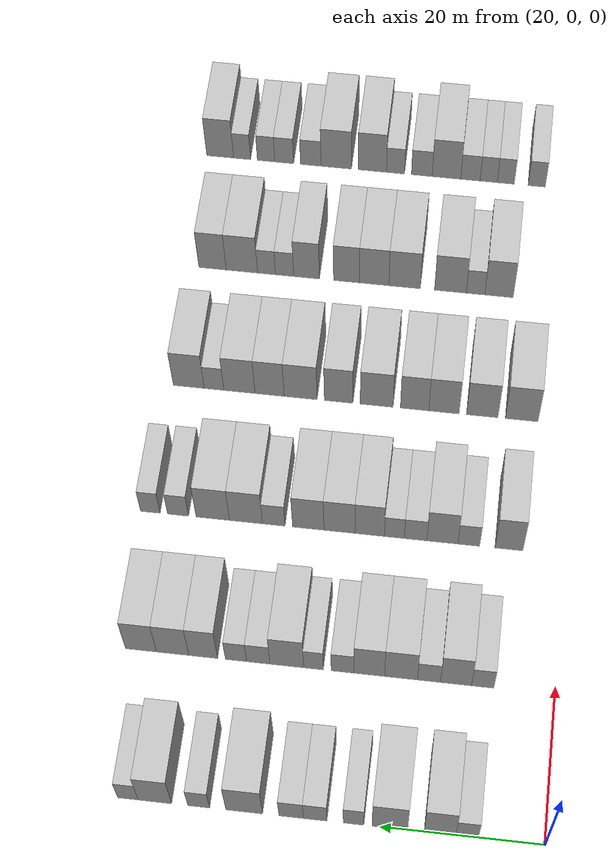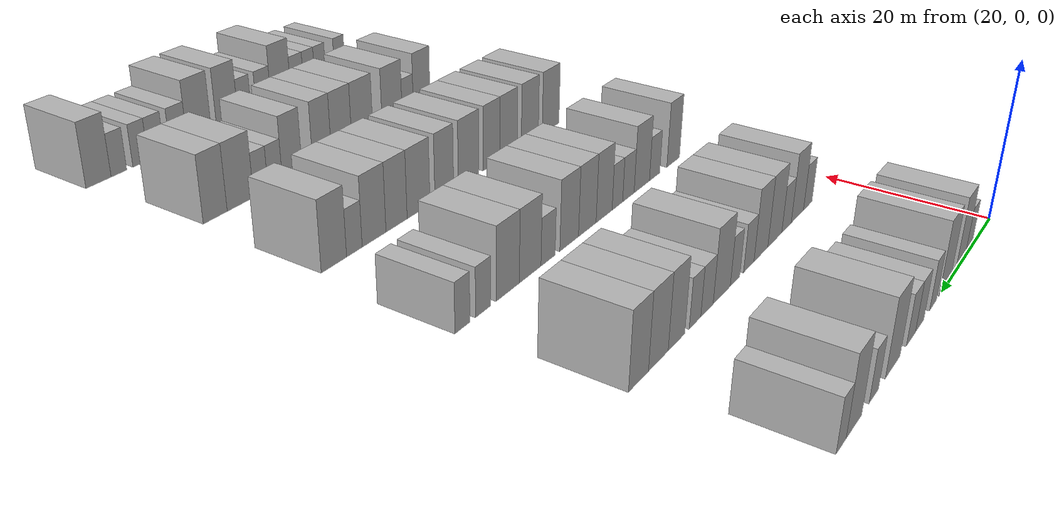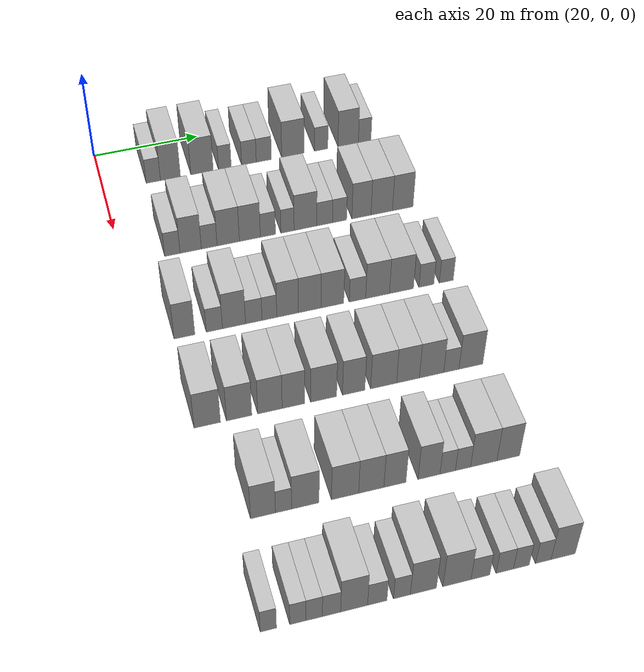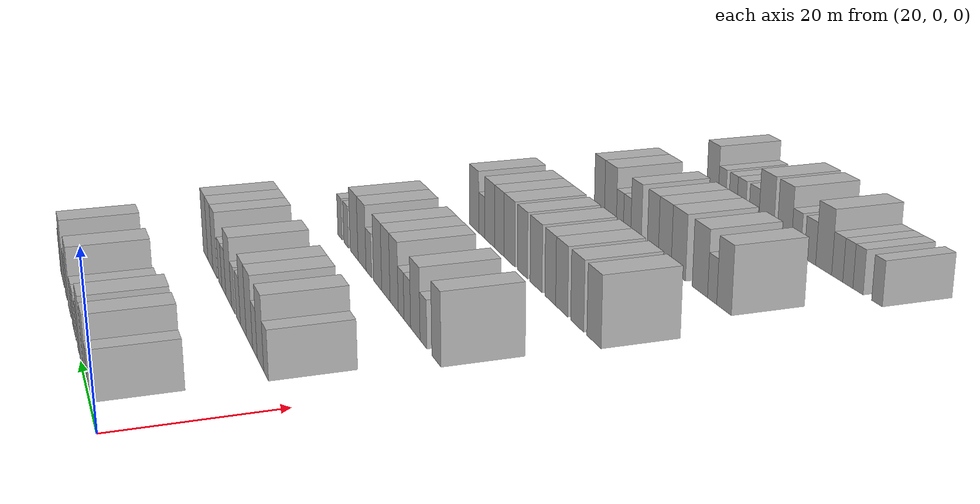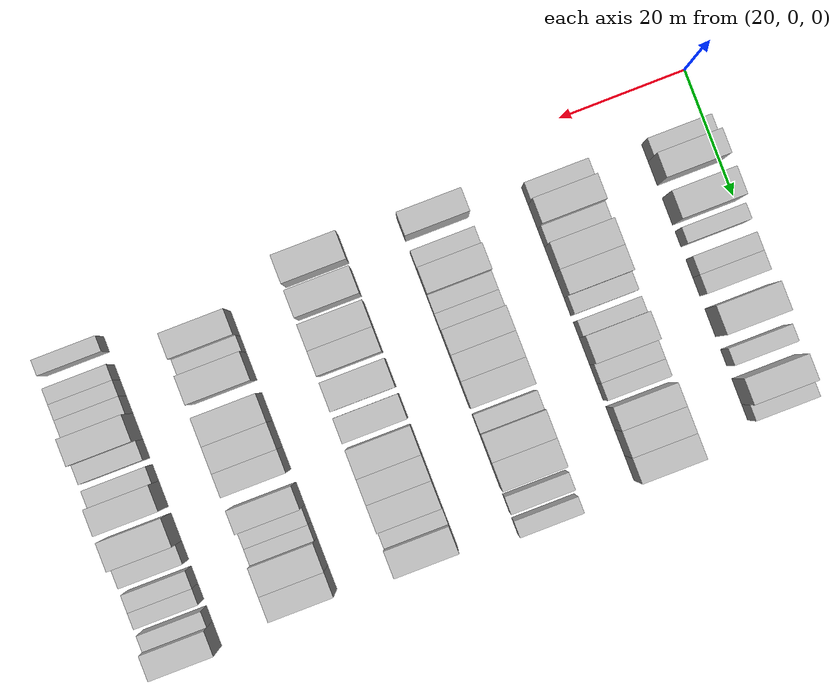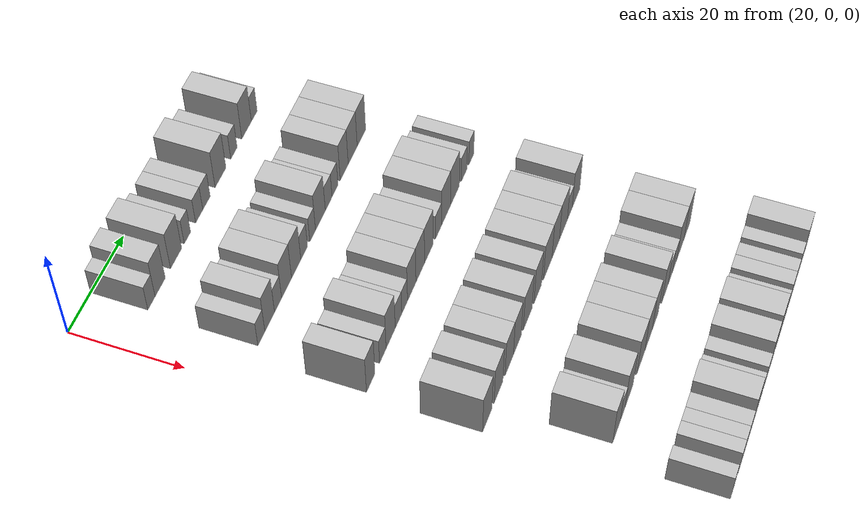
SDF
<sdf version="1.6">
 <world name="default">
  <model name="building_89">
   <static>1</static>
   <pose>25.0000 9.4239 0 0.000000 0.000000 0.000000</pose>
   <link name="link">
    <pose>0 0 3.00 0 0 0</pose>
    <collision name="collision"><geometry><box><size>10.0000 2.7198 6.0000</size></box></geometry></collision>
    <visual name="visual">
     <cast_shadows>0</cast_shadows>
     <geometry><box><size>10.0000 2.7198 6.0000</size></box></geometry>
     <material>
      <script>
       <uri>model://HANNAS_wall/materials/scripts</uri>
       <uri>model://HANNAS_wall/materials/textures</uri>
       <name>vrc/HANNAS_wall</name>
      </script>
     </material>
    </visual>
   </link>
  </model>
  <model name="building_90">
   <static>1</static>
   <pose>25.0000 12.6986 0 0.000000 0.000000 0.000000</pose>
   <link name="link">
    <pose>0 0 4.50 0 0 0</pose>
    <collision name="collision"><geometry><box><size>10.0000 3.8296 9.0000</size></box></geometry></collision>
    <visual name="visual">
     <cast_shadows>0</cast_shadows>
     <geometry><box><size>10.0000 3.8296 9.0000</size></box></geometry>
     <material>
      <script>
       <uri>model://HANNAS_wall/materials/scripts</uri>
       <uri>model://HANNAS_wall/materials/textures</uri>
       <name>vrc/HANNAS_wall</name>
      </script>
     </material>
    </visual>
   </link>
  </model>
  <model name="building_91">
   <static>1</static>
   <pose>25.0000 18.7705 0 0.000000 0.000000 0.000000</pose>
   <link name="link">
    <pose>0 0 4.50 0 0 0</pose>
    <collision name="collision"><geometry><box><size>10.0000 4.3143 9.0000</size></box></geometry></collision>
    <visual name="visual">
     <cast_shadows>0</cast_shadows>
     <geometry><box><size>10.0000 4.3143 9.0000</size></box></geometry>
     <material>
      <script>
       <uri>model://HANNAS_wall/materials/scripts</uri>
       <uri>model://HANNAS_wall/materials/textures</uri>
       <name>vrc/HANNAS_wall</name>
      </script>
     </material>
    </visual>
   </link>
  </model>
  <model name="building_92">
   <static>1</static>
   <pose>25.0000 23.1720 0 0.000000 0.000000 0.000000</pose>
   <link name="link">
    <pose>0 0 3.00 0 0 0</pose>
    <collision name="collision"><geometry><box><size>10.0000 2.4886 6.0000</size></box></geometry></collision>
    <visual name="visual">
     <cast_shadows>0</cast_shadows>
     <geometry><box><size>10.0000 2.4886 6.0000</size></box></geometry>
     <material>
      <script>
       <uri>model://HANNAS_wall/materials/scripts</uri>
       <uri>model://HANNAS_wall/materials/textures</uri>
       <name>vrc/HANNAS_wall</name>
      </script>
     </material>
    </visual>
   </link>
  </model>
  <model name="building_93">
   <static>1</static>
   <pose>25.0000 27.8497 0 0.000000 0.000000 0.000000</pose>
   <link name="link">
    <pose>0 0 3.00 0 0 0</pose>
    <collision name="collision"><geometry><box><size>10.0000 2.8667 6.0000</size></box></geometry></collision>
    <visual name="visual">
     <cast_shadows>0</cast_shadows>
     <geometry><box><size>10.0000 2.8667 6.0000</size></box></geometry>
     <material>
      <script>
       <uri>model://HANNAS_wall/materials/scripts</uri>
       <uri>model://HANNAS_wall/materials/textures</uri>
       <name>vrc/HANNAS_wall</name>
      </script>
     </material>
    </visual>
   </link>
  </model>
  <model name="building_94">
   <static>1</static>
   <pose>25.0000 30.7694 0 0.000000 0.000000 0.000000</pose>
   <link name="link">
    <pose>0 0 3.00 0 0 0</pose>
    <collision name="collision"><geometry><box><size>10.0000 2.9728 6.0000</size></box></geometry></collision>
    <visual name="visual">
     <cast_shadows>0</cast_shadows>
     <geometry><box><size>10.0000 2.9728 6.0000</size></box></geometry>
     <material>
      <script>
       <uri>model://HANNAS_wall/materials/scripts</uri>
       <uri>model://HANNAS_wall/materials/textures</uri>
       <name>vrc/HANNAS_wall</name>
      </script>
     </material>
    </visual>
   </link>
  </model>
  <model name="building_95">
   <static>1</static>
   <pose>25.0000 36.4947 0 0.000000 0.000000 0.000000</pose>
   <link name="link">
    <pose>0 0 4.50 0 0 0</pose>
    <collision name="collision"><geometry><box><size>10.0000 4.4778 9.0000</size></box></geometry></collision>
    <visual name="visual">
     <cast_shadows>0</cast_shadows>
     <geometry><box><size>10.0000 4.4778 9.0000</size></box></geometry>
     <material>
      <script>
       <uri>model://HANNAS_wall/materials/scripts</uri>
       <uri>model://HANNAS_wall/materials/textures</uri>
       <name>vrc/HANNAS_wall</name>
      </script>
     </material>
    </visual>
   </link>
  </model>
  <model name="building_96">
   <static>1</static>
   <pose>25.0000 42.0654 0 0.000000 0.000000 0.000000</pose>
   <link name="link">
    <pose>0 0 3.00 0 0 0</pose>
    <collision name="collision"><geometry><box><size>10.0000 2.6636 6.0000</size></box></geometry></collision>
    <visual name="visual">
     <cast_shadows>0</cast_shadows>
     <geometry><box><size>10.0000 2.6636 6.0000</size></box></geometry>
     <material>
      <script>
       <uri>model://HANNAS_wall/materials/scripts</uri>
       <uri>model://HANNAS_wall/materials/textures</uri>
       <name>vrc/HANNAS_wall</name>
      </script>
     </material>
    </visual>
   </link>
  </model>
  <model name="building_97">
   <static>1</static>
   <pose>25.0000 47.4403 0 0.000000 0.000000 0.000000</pose>
   <link name="link">
    <pose>0 0 4.50 0 0 0</pose>
    <collision name="collision"><geometry><box><size>10.0000 4.0862 9.0000</size></box></geometry></collision>
    <visual name="visual">
     <cast_shadows>0</cast_shadows>
     <geometry><box><size>10.0000 4.0862 9.0000</size></box></geometry>
     <material>
      <script>
       <uri>model://HANNAS_wall/materials/scripts</uri>
       <uri>model://HANNAS_wall/materials/textures</uri>
       <name>vrc/HANNAS_wall</name>
      </script>
     </material>
    </visual>
   </link>
  </model>
  <model name="building_98">
   <static>1</static>
   <pose>25.0000 50.7488 0 0.000000 0.000000 0.000000</pose>
   <link name="link">
    <pose>0 0 3.00 0 0 0</pose>
    <collision name="collision"><geometry><box><size>10.0000 2.5308 6.0000</size></box></geometry></collision>
    <visual name="visual">
     <cast_shadows>0</cast_shadows>
     <geometry><box><size>10.0000 2.5308 6.0000</size></box></geometry>
     <material>
      <script>
       <uri>model://HANNAS_wall/materials/scripts</uri>
       <uri>model://HANNAS_wall/materials/textures</uri>
       <name>vrc/HANNAS_wall</name>
      </script>
     </material>
    </visual>
   </link>
  </model>
  <model name="building_256">
   <static>1</static>
   <pose>44.0000 9.0616 0 0.000000 0.000000 0.000000</pose>
   <link name="link">
    <pose>0 0 3.00 0 0 0</pose>
    <collision name="collision"><geometry><box><size>10.0000 2.8028 6.0000</size></box></geometry></collision>
    <visual name="visual">
     <cast_shadows>0</cast_shadows>
     <geometry><box><size>10.0000 2.8028 6.0000</size></box></geometry>
     <material>
      <script>
       <uri>model://HANNAS_wall/materials/scripts</uri>
       <uri>model://HANNAS_wall/materials/textures</uri>
       <name>vrc/HANNAS_wall</name>
      </script>
     </material>
    </visual>
   </link>
  </model>
  <model name="building_257">
   <static>1</static>
   <pose>44.0000 12.4159 0 0.000000 0.000000 0.000000</pose>
   <link name="link">
    <pose>0 0 4.50 0 0 0</pose>
    <collision name="collision"><geometry><box><size>10.0000 3.9057 9.0000</size></box></geometry></collision>
    <visual name="visual">
     <cast_shadows>0</cast_shadows>
     <geometry><box><size>10.0000 3.9057 9.0000</size></box></geometry>
     <material>
      <script>
       <uri>model://HANNAS_wall/materials/scripts</uri>
       <uri>model://HANNAS_wall/materials/textures</uri>
       <name>vrc/HANNAS_wall</name>
      </script>
     </material>
    </visual>
   </link>
  </model>
  <model name="building_258">
   <static>1</static>
   <pose>44.0000 15.8152 0 0.000000 0.000000 0.000000</pose>
   <link name="link">
    <pose>0 0 3.00 0 0 0</pose>
    <collision name="collision"><geometry><box><size>10.0000 2.8927 6.0000</size></box></geometry></collision>
    <visual name="visual">
     <cast_shadows>0</cast_shadows>
     <geometry><box><size>10.0000 2.8927 6.0000</size></box></geometry>
     <material>
      <script>
       <uri>model://HANNAS_wall/materials/scripts</uri>
       <uri>model://HANNAS_wall/materials/textures</uri>
       <name>vrc/HANNAS_wall</name>
      </script>
     </material>
    </visual>
   </link>
  </model>
  <model name="building_259">
   <static>1</static>
   <pose>44.0000 19.3243 0 0.000000 0.000000 0.000000</pose>
   <link name="link">
    <pose>0 0 4.50 0 0 0</pose>
    <collision name="collision"><geometry><box><size>10.0000 4.1255 9.0000</size></box></geometry></collision>
    <visual name="visual">
     <cast_shadows>0</cast_shadows>
     <geometry><box><size>10.0000 4.1255 9.0000</size></box></geometry>
     <material>
      <script>
       <uri>model://HANNAS_wall/materials/scripts</uri>
       <uri>model://HANNAS_wall/materials/textures</uri>
       <name>vrc/HANNAS_wall</name>
      </script>
     </material>
    </visual>
   </link>
  </model>
  <model name="building_260">
   <static>1</static>
   <pose>44.0000 23.3385 0 0.000000 0.000000 0.000000</pose>
   <link name="link">
    <pose>0 0 4.50 0 0 0</pose>
    <collision name="collision"><geometry><box><size>10.0000 3.9030 9.0000</size></box></geometry></collision>
    <visual name="visual">
     <cast_shadows>0</cast_shadows>
     <geometry><box><size>10.0000 3.9030 9.0000</size></box></geometry>
     <material>
      <script>
       <uri>model://HANNAS_wall/materials/scripts</uri>
       <uri>model://HANNAS_wall/materials/textures</uri>
       <name>vrc/HANNAS_wall</name>
      </script>
     </material>
    </visual>
   </link>
  </model>
  <model name="building_261">
   <static>1</static>
   <pose>44.0000 26.7126 0 0.000000 0.000000 0.000000</pose>
   <link name="link">
    <pose>0 0 3.00 0 0 0</pose>
    <collision name="collision"><geometry><box><size>10.0000 2.8452 6.0000</size></box></geometry></collision>
    <visual name="visual">
     <cast_shadows>0</cast_shadows>
     <geometry><box><size>10.0000 2.8452 6.0000</size></box></geometry>
     <material>
      <script>
       <uri>model://HANNAS_wall/materials/scripts</uri>
       <uri>model://HANNAS_wall/materials/textures</uri>
       <name>vrc/HANNAS_wall</name>
      </script>
     </material>
    </visual>
   </link>
  </model>
  <model name="building_262">
   <static>1</static>
   <pose>44.0000 30.3696 0 0.000000 0.000000 0.000000</pose>
   <link name="link">
    <pose>0 0 3.00 0 0 0</pose>
    <collision name="collision"><geometry><box><size>10.0000 2.4688 6.0000</size></box></geometry></collision>
    <visual name="visual">
     <cast_shadows>0</cast_shadows>
     <geometry><box><size>10.0000 2.4688 6.0000</size></box></geometry>
     <material>
      <script>
       <uri>model://HANNAS_wall/materials/scripts</uri>
       <uri>model://HANNAS_wall/materials/textures</uri>
       <name>vrc/HANNAS_wall</name>
      </script>
     </material>
    </visual>
   </link>
  </model>
  <model name="building_263">
   <static>1</static>
   <pose>44.0000 33.7501 0 0.000000 0.000000 0.000000</pose>
   <link name="link">
    <pose>0 0 4.50 0 0 0</pose>
    <collision name="collision"><geometry><box><size>10.0000 4.2922 9.0000</size></box></geometry></collision>
    <visual name="visual">
     <cast_shadows>0</cast_shadows>
     <geometry><box><size>10.0000 4.2922 9.0000</size></box></geometry>
     <material>
      <script>
       <uri>model://HANNAS_wall/materials/scripts</uri>
       <uri>model://HANNAS_wall/materials/textures</uri>
       <name>vrc/HANNAS_wall</name>
      </script>
     </material>
    </visual>
   </link>
  </model>
  <model name="building_264">
   <static>1</static>
   <pose>44.0000 37.3815 0 0.000000 0.000000 0.000000</pose>
   <link name="link">
    <pose>0 0 3.00 0 0 0</pose>
    <collision name="collision"><geometry><box><size>10.0000 2.9707 6.0000</size></box></geometry></collision>
    <visual name="visual">
     <cast_shadows>0</cast_shadows>
     <geometry><box><size>10.0000 2.9707 6.0000</size></box></geometry>
     <material>
      <script>
       <uri>model://HANNAS_wall/materials/scripts</uri>
       <uri>model://HANNAS_wall/materials/textures</uri>
       <name>vrc/HANNAS_wall</name>
      </script>
     </material>
    </visual>
   </link>
  </model>
  <model name="building_265">
   <static>1</static>
   <pose>44.0000 40.2099 0 0.000000 0.000000 0.000000</pose>
   <link name="link">
    <pose>0 0 3.00 0 0 0</pose>
    <collision name="collision"><geometry><box><size>10.0000 2.6861 6.0000</size></box></geometry></collision>
    <visual name="visual">
     <cast_shadows>0</cast_shadows>
     <geometry><box><size>10.0000 2.6861 6.0000</size></box></geometry>
     <material>
      <script>
       <uri>model://HANNAS_wall/materials/scripts</uri>
       <uri>model://HANNAS_wall/materials/textures</uri>
       <name>vrc/HANNAS_wall</name>
      </script>
     </material>
    </visual>
   </link>
  </model>
  <model name="building_266">
   <static>1</static>
   <pose>44.0000 44.3796 0 0.000000 0.000000 0.000000</pose>
   <link name="link">
    <pose>0 0 4.50 0 0 0</pose>
    <collision name="collision"><geometry><box><size>10.0000 3.6533 9.0000</size></box></geometry></collision>
    <visual name="visual">
     <cast_shadows>0</cast_shadows>
     <geometry><box><size>10.0000 3.6533 9.0000</size></box></geometry>
     <material>
      <script>
       <uri>model://HANNAS_wall/materials/scripts</uri>
       <uri>model://HANNAS_wall/materials/textures</uri>
       <name>vrc/HANNAS_wall</name>
      </script>
     </material>
    </visual>
   </link>
  </model>
  <model name="building_267">
   <static>1</static>
   <pose>44.0000 48.2696 0 0.000000 0.000000 0.000000</pose>
   <link name="link">
    <pose>0 0 4.50 0 0 0</pose>
    <collision name="collision"><geometry><box><size>10.0000 4.1268 9.0000</size></box></geometry></collision>
    <visual name="visual">
     <cast_shadows>0</cast_shadows>
     <geometry><box><size>10.0000 4.1268 9.0000</size></box></geometry>
     <material>
      <script>
       <uri>model://HANNAS_wall/materials/scripts</uri>
       <uri>model://HANNAS_wall/materials/textures</uri>
       <name>vrc/HANNAS_wall</name>
      </script>
     </material>
    </visual>
   </link>
  </model>
  <model name="building_268">
   <static>1</static>
   <pose>44.0000 52.3175 0 0.000000 0.000000 0.000000</pose>
   <link name="link">
    <pose>0 0 4.50 0 0 0</pose>
    <collision name="collision"><geometry><box><size>10.0000 3.9690 9.0000</size></box></geometry></collision>
    <visual name="visual">
     <cast_shadows>0</cast_shadows>
     <geometry><box><size>10.0000 3.9690 9.0000</size></box></geometry>
     <material>
      <script>
       <uri>model://HANNAS_wall/materials/scripts</uri>
       <uri>model://HANNAS_wall/materials/textures</uri>
       <name>vrc/HANNAS_wall</name>
      </script>
     </material>
    </visual>
   </link>
  </model>
  <model name="building_432">
   <static>1</static>
   <pose>63.0000 7.1643 0 0.000000 0.000000 0.000000</pose>
   <link name="link">
    <pose>0 0 4.50 0 0 0</pose>
    <collision name="collision"><geometry><box><size>10.0000 3.6273 9.0000</size></box></geometry></collision>
    <visual name="visual">
     <cast_shadows>0</cast_shadows>
     <geometry><box><size>10.0000 3.6273 9.0000</size></box></geometry>
     <material>
      <script>
       <uri>model://HANNAS_wall/materials/scripts</uri>
       <uri>model://HANNAS_wall/materials/textures</uri>
       <name>vrc/HANNAS_wall</name>
      </script>
     </material>
    </visual>
   </link>
  </model>
  <model name="building_433">
   <static>1</static>
   <pose>63.0000 12.3921 0 0.000000 0.000000 0.000000</pose>
   <link name="link">
    <pose>0 0 3.00 0 0 0</pose>
    <collision name="collision"><geometry><box><size>10.0000 2.8283 6.0000</size></box></geometry></collision>
    <visual name="visual">
     <cast_shadows>0</cast_shadows>
     <geometry><box><size>10.0000 2.8283 6.0000</size></box></geometry>
     <material>
      <script>
       <uri>model://HANNAS_wall/materials/scripts</uri>
       <uri>model://HANNAS_wall/materials/textures</uri>
       <name>vrc/HANNAS_wall</name>
      </script>
     </material>
    </visual>
   </link>
  </model>
  <model name="building_434">
   <static>1</static>
   <pose>63.0000 15.8388 0 0.000000 0.000000 0.000000</pose>
   <link name="link">
    <pose>0 0 4.50 0 0 0</pose>
    <collision name="collision"><geometry><box><size>10.0000 4.0650 9.0000</size></box></geometry></collision>
    <visual name="visual">
     <cast_shadows>0</cast_shadows>
     <geometry><box><size>10.0000 4.0650 9.0000</size></box></geometry>
     <material>
      <script>
       <uri>model://HANNAS_wall/materials/scripts</uri>
       <uri>model://HANNAS_wall/materials/textures</uri>
       <name>vrc/HANNAS_wall</name>
      </script>
     </material>
    </visual>
   </link>
  </model>
  <model name="building_435">
   <static>1</static>
   <pose>63.0000 19.3371 0 0.000000 0.000000 0.000000</pose>
   <link name="link">
    <pose>0 0 3.00 0 0 0</pose>
    <collision name="collision"><geometry><box><size>10.0000 2.9315 6.0000</size></box></geometry></collision>
    <visual name="visual">
     <cast_shadows>0</cast_shadows>
     <geometry><box><size>10.0000 2.9315 6.0000</size></box></geometry>
     <material>
      <script>
       <uri>model://HANNAS_wall/materials/scripts</uri>
       <uri>model://HANNAS_wall/materials/textures</uri>
       <name>vrc/HANNAS_wall</name>
      </script>
     </material>
    </visual>
   </link>
  </model>
  <model name="building_436">
   <static>1</static>
   <pose>63.0000 22.1099 0 0.000000 0.000000 0.000000</pose>
   <link name="link">
    <pose>0 0 3.00 0 0 0</pose>
    <collision name="collision"><geometry><box><size>10.0000 2.6143 6.0000</size></box></geometry></collision>
    <visual name="visual">
     <cast_shadows>0</cast_shadows>
     <geometry><box><size>10.0000 2.6143 6.0000</size></box></geometry>
     <material>
      <script>
       <uri>model://HANNAS_wall/materials/scripts</uri>
       <uri>model://HANNAS_wall/materials/textures</uri>
       <name>vrc/HANNAS_wall</name>
      </script>
     </material>
    </visual>
   </link>
  </model>
  <model name="building_437">
   <static>1</static>
   <pose>63.0000 25.3473 0 0.000000 0.000000 0.000000</pose>
   <link name="link">
    <pose>0 0 4.50 0 0 0</pose>
    <collision name="collision"><geometry><box><size>10.0000 3.8605 9.0000</size></box></geometry></collision>
    <visual name="visual">
     <cast_shadows>0</cast_shadows>
     <geometry><box><size>10.0000 3.8605 9.0000</size></box></geometry>
     <material>
      <script>
       <uri>model://HANNAS_wall/materials/scripts</uri>
       <uri>model://HANNAS_wall/materials/textures</uri>
       <name>vrc/HANNAS_wall</name>
      </script>
     </material>
    </visual>
   </link>
  </model>
  <model name="building_438">
   <static>1</static>
   <pose>63.0000 29.3038 0 0.000000 0.000000 0.000000</pose>
   <link name="link">
    <pose>0 0 4.50 0 0 0</pose>
    <collision name="collision"><geometry><box><size>10.0000 4.0525 9.0000</size></box></geometry></collision>
    <visual name="visual">
     <cast_shadows>0</cast_shadows>
     <geometry><box><size>10.0000 4.0525 9.0000</size></box></geometry>
     <material>
      <script>
       <uri>model://HANNAS_wall/materials/scripts</uri>
       <uri>model://HANNAS_wall/materials/textures</uri>
       <name>vrc/HANNAS_wall</name>
      </script>
     </material>
    </visual>
   </link>
  </model>
  <model name="building_439">
   <static>1</static>
   <pose>63.0000 33.3932 0 0.000000 0.000000 0.000000</pose>
   <link name="link">
    <pose>0 0 4.50 0 0 0</pose>
    <collision name="collision"><geometry><box><size>10.0000 4.1262 9.0000</size></box></geometry></collision>
    <visual name="visual">
     <cast_shadows>0</cast_shadows>
     <geometry><box><size>10.0000 4.1262 9.0000</size></box></geometry>
     <material>
      <script>
       <uri>model://HANNAS_wall/materials/scripts</uri>
       <uri>model://HANNAS_wall/materials/textures</uri>
       <name>vrc/HANNAS_wall</name>
      </script>
     </material>
    </visual>
   </link>
  </model>
  <model name="building_440">
   <static>1</static>
   <pose>63.0000 37.9385 0 0.000000 0.000000 0.000000</pose>
   <link name="link">
    <pose>0 0 3.00 0 0 0</pose>
    <collision name="collision"><geometry><box><size>10.0000 2.9646 6.0000</size></box></geometry></collision>
    <visual name="visual">
     <cast_shadows>0</cast_shadows>
     <geometry><box><size>10.0000 2.9646 6.0000</size></box></geometry>
     <material>
      <script>
       <uri>model://HANNAS_wall/materials/scripts</uri>
       <uri>model://HANNAS_wall/materials/textures</uri>
       <name>vrc/HANNAS_wall</name>
      </script>
     </material>
    </visual>
   </link>
  </model>
  <model name="building_441">
   <static>1</static>
   <pose>63.0000 41.5981 0 0.000000 0.000000 0.000000</pose>
   <link name="link">
    <pose>0 0 4.50 0 0 0</pose>
    <collision name="collision"><geometry><box><size>10.0000 4.3545 9.0000</size></box></geometry></collision>
    <visual name="visual">
     <cast_shadows>0</cast_shadows>
     <geometry><box><size>10.0000 4.3545 9.0000</size></box></geometry>
     <material>
      <script>
       <uri>model://HANNAS_wall/materials/scripts</uri>
       <uri>model://HANNAS_wall/materials/textures</uri>
       <name>vrc/HANNAS_wall</name>
      </script>
     </material>
    </visual>
   </link>
  </model>
  <model name="building_442">
   <static>1</static>
   <pose>63.0000 45.9833 0 0.000000 0.000000 0.000000</pose>
   <link name="link">
    <pose>0 0 4.50 0 0 0</pose>
    <collision name="collision"><geometry><box><size>10.0000 4.4160 9.0000</size></box></geometry></collision>
    <visual name="visual">
     <cast_shadows>0</cast_shadows>
     <geometry><box><size>10.0000 4.4160 9.0000</size></box></geometry>
     <material>
      <script>
       <uri>model://HANNAS_wall/materials/scripts</uri>
       <uri>model://HANNAS_wall/materials/textures</uri>
       <name>vrc/HANNAS_wall</name>
      </script>
     </material>
    </visual>
   </link>
  </model>
  <model name="building_443">
   <static>1</static>
   <pose>63.0000 50.5757 0 0.000000 0.000000 0.000000</pose>
   <link name="link">
    <pose>0 0 3.00 0 0 0</pose>
    <collision name="collision"><geometry><box><size>10.0000 2.7686 6.0000</size></box></geometry></collision>
    <visual name="visual">
     <cast_shadows>0</cast_shadows>
     <geometry><box><size>10.0000 2.7686 6.0000</size></box></geometry>
     <material>
      <script>
       <uri>model://HANNAS_wall/materials/scripts</uri>
       <uri>model://HANNAS_wall/materials/textures</uri>
       <name>vrc/HANNAS_wall</name>
      </script>
     </material>
    </visual>
   </link>
  </model>
  <model name="building_444">
   <static>1</static>
   <pose>63.0000 54.2543 0 0.000000 0.000000 0.000000</pose>
   <link name="link">
    <pose>0 0 3.00 0 0 0</pose>
    <collision name="collision"><geometry><box><size>10.0000 2.5886 6.0000</size></box></geometry></collision>
    <visual name="visual">
     <cast_shadows>0</cast_shadows>
     <geometry><box><size>10.0000 2.5886 6.0000</size></box></geometry>
     <material>
      <script>
       <uri>model://HANNAS_wall/materials/scripts</uri>
       <uri>model://HANNAS_wall/materials/textures</uri>
       <name>vrc/HANNAS_wall</name>
      </script>
     </material>
    </visual>
   </link>
  </model>
  <model name="building_598">
   <static>1</static>
   <pose>82.0000 6.8395 0 0.000000 0.000000 0.000000</pose>
   <link name="link">
    <pose>0 0 4.50 0 0 0</pose>
    <collision name="collision"><geometry><box><size>10.0000 4.3934 9.0000</size></box></geometry></collision>
    <visual name="visual">
     <cast_shadows>0</cast_shadows>
     <geometry><box><size>10.0000 4.3934 9.0000</size></box></geometry>
     <material>
      <script>
       <uri>model://HANNAS_wall/materials/scripts</uri>
       <uri>model://HANNAS_wall/materials/textures</uri>
       <name>vrc/HANNAS_wall</name>
      </script>
     </material>
    </visual>
   </link>
  </model>
  <model name="building_599">
   <static>1</static>
   <pose>82.0000 12.1576 0 0.000000 0.000000 0.000000</pose>
   <link name="link">
    <pose>0 0 4.50 0 0 0</pose>
    <collision name="collision"><geometry><box><size>10.0000 4.2428 9.0000</size></box></geometry></collision>
    <visual name="visual">
     <cast_shadows>0</cast_shadows>
     <geometry><box><size>10.0000 4.2428 9.0000</size></box></geometry>
     <material>
      <script>
       <uri>model://HANNAS_wall/materials/scripts</uri>
       <uri>model://HANNAS_wall/materials/textures</uri>
       <name>vrc/HANNAS_wall</name>
      </script>
     </material>
    </visual>
   </link>
  </model>
  <model name="building_600">
   <static>1</static>
   <pose>82.0000 17.3331 0 0.000000 0.000000 0.000000</pose>
   <link name="link">
    <pose>0 0 4.50 0 0 0</pose>
    <collision name="collision"><geometry><box><size>10.0000 4.1081 9.0000</size></box></geometry></collision>
    <visual name="visual">
     <cast_shadows>0</cast_shadows>
     <geometry><box><size>10.0000 4.1081 9.0000</size></box></geometry>
     <material>
      <script>
       <uri>model://HANNAS_wall/materials/scripts</uri>
       <uri>model://HANNAS_wall/materials/textures</uri>
       <name>vrc/HANNAS_wall</name>
      </script>
     </material>
    </visual>
   </link>
  </model>
  <model name="building_601">
   <static>1</static>
   <pose>82.0000 21.3079 0 0.000000 0.000000 0.000000</pose>
   <link name="link">
    <pose>0 0 4.50 0 0 0</pose>
    <collision name="collision"><geometry><box><size>10.0000 3.8416 9.0000</size></box></geometry></collision>
    <visual name="visual">
     <cast_shadows>0</cast_shadows>
     <geometry><box><size>10.0000 3.8416 9.0000</size></box></geometry>
     <material>
      <script>
       <uri>model://HANNAS_wall/materials/scripts</uri>
       <uri>model://HANNAS_wall/materials/textures</uri>
       <name>vrc/HANNAS_wall</name>
      </script>
     </material>
    </visual>
   </link>
  </model>
  <model name="building_602">
   <static>1</static>
   <pose>82.0000 26.4532 0 0.000000 0.000000 0.000000</pose>
   <link name="link">
    <pose>0 0 4.50 0 0 0</pose>
    <collision name="collision"><geometry><box><size>10.0000 4.4490 9.0000</size></box></geometry></collision>
    <visual name="visual">
     <cast_shadows>0</cast_shadows>
     <geometry><box><size>10.0000 4.4490 9.0000</size></box></geometry>
     <material>
      <script>
       <uri>model://HANNAS_wall/materials/scripts</uri>
       <uri>model://HANNAS_wall/materials/textures</uri>
       <name>vrc/HANNAS_wall</name>
      </script>
     </material>
    </visual>
   </link>
  </model>
  <model name="building_603">
   <static>1</static>
   <pose>82.0000 31.6119 0 0.000000 0.000000 0.000000</pose>
   <link name="link">
    <pose>0 0 4.50 0 0 0</pose>
    <collision name="collision"><geometry><box><size>10.0000 3.8684 9.0000</size></box></geometry></collision>
    <visual name="visual">
     <cast_shadows>0</cast_shadows>
     <geometry><box><size>10.0000 3.8684 9.0000</size></box></geometry>
     <material>
      <script>
       <uri>model://HANNAS_wall/materials/scripts</uri>
       <uri>model://HANNAS_wall/materials/textures</uri>
       <name>vrc/HANNAS_wall</name>
      </script>
     </material>
    </visual>
   </link>
  </model>
  <model name="building_604">
   <static>1</static>
   <pose>82.0000 36.7904 0 0.000000 0.000000 0.000000</pose>
   <link name="link">
    <pose>0 0 4.50 0 0 0</pose>
    <collision name="collision"><geometry><box><size>10.0000 4.4886 9.0000</size></box></geometry></collision>
    <visual name="visual">
     <cast_shadows>0</cast_shadows>
     <geometry><box><size>10.0000 4.4886 9.0000</size></box></geometry>
     <material>
      <script>
       <uri>model://HANNAS_wall/materials/scripts</uri>
       <uri>model://HANNAS_wall/materials/textures</uri>
       <name>vrc/HANNAS_wall</name>
      </script>
     </material>
    </visual>
   </link>
  </model>
  <model name="building_605">
   <static>1</static>
   <pose>82.0000 41.0226 0 0.000000 0.000000 0.000000</pose>
   <link name="link">
    <pose>0 0 4.50 0 0 0</pose>
    <collision name="collision"><geometry><box><size>10.0000 3.9758 9.0000</size></box></geometry></collision>
    <visual name="visual">
     <cast_shadows>0</cast_shadows>
     <geometry><box><size>10.0000 3.9758 9.0000</size></box></geometry>
     <material>
      <script>
       <uri>model://HANNAS_wall/materials/scripts</uri>
       <uri>model://HANNAS_wall/materials/textures</uri>
       <name>vrc/HANNAS_wall</name>
      </script>
     </material>
    </visual>
   </link>
  </model>
  <model name="building_606">
   <static>1</static>
   <pose>82.0000 45.1505 0 0.000000 0.000000 0.000000</pose>
   <link name="link">
    <pose>0 0 4.50 0 0 0</pose>
    <collision name="collision"><geometry><box><size>10.0000 4.2802 9.0000</size></box></geometry></collision>
    <visual name="visual">
     <cast_shadows>0</cast_shadows>
     <geometry><box><size>10.0000 4.2802 9.0000</size></box></geometry>
     <material>
      <script>
       <uri>model://HANNAS_wall/materials/scripts</uri>
       <uri>model://HANNAS_wall/materials/textures</uri>
       <name>vrc/HANNAS_wall</name>
      </script>
     </material>
    </visual>
   </link>
  </model>
  <model name="building_607">
   <static>1</static>
   <pose>82.0000 48.6370 0 0.000000 0.000000 0.000000</pose>
   <link name="link">
    <pose>0 0 3.00 0 0 0</pose>
    <collision name="collision"><geometry><box><size>10.0000 2.6927 6.0000</size></box></geometry></collision>
    <visual name="visual">
     <cast_shadows>0</cast_shadows>
     <geometry><box><size>10.0000 2.6927 6.0000</size></box></geometry>
     <material>
      <script>
       <uri>model://HANNAS_wall/materials/scripts</uri>
       <uri>model://HANNAS_wall/materials/textures</uri>
       <name>vrc/HANNAS_wall</name>
      </script>
     </material>
    </visual>
   </link>
  </model>
  <model name="building_608">
   <static>1</static>
   <pose>82.0000 52.0952 0 0.000000 0.000000 0.000000</pose>
   <link name="link">
    <pose>0 0 4.50 0 0 0</pose>
    <collision name="collision"><geometry><box><size>10.0000 4.2237 9.0000</size></box></geometry></collision>
    <visual name="visual">
     <cast_shadows>0</cast_shadows>
     <geometry><box><size>10.0000 4.2237 9.0000</size></box></geometry>
     <material>
      <script>
       <uri>model://HANNAS_wall/materials/scripts</uri>
       <uri>model://HANNAS_wall/materials/textures</uri>
       <name>vrc/HANNAS_wall</name>
      </script>
     </material>
    </visual>
   </link>
  </model>
  <model name="building_752">
   <static>1</static>
   <pose>101.0000 11.3421 0 0.000000 0.000000 0.000000</pose>
   <link name="link">
    <pose>0 0 4.50 0 0 0</pose>
    <collision name="collision"><geometry><box><size>10.0000 3.9722 9.0000</size></box></geometry></collision>
    <visual name="visual">
     <cast_shadows>0</cast_shadows>
     <geometry><box><size>10.0000 3.9722 9.0000</size></box></geometry>
     <material>
      <script>
       <uri>model://HANNAS_wall/materials/scripts</uri>
       <uri>model://HANNAS_wall/materials/textures</uri>
       <name>vrc/HANNAS_wall</name>
      </script>
     </material>
    </visual>
   </link>
  </model>
  <model name="building_753">
   <static>1</static>
   <pose>101.0000 14.6197 0 0.000000 0.000000 0.000000</pose>
   <link name="link">
    <pose>0 0 3.00 0 0 0</pose>
    <collision name="collision"><geometry><box><size>10.0000 2.5831 6.0000</size></box></geometry></collision>
    <visual name="visual">
     <cast_shadows>0</cast_shadows>
     <geometry><box><size>10.0000 2.5831 6.0000</size></box></geometry>
     <material>
      <script>
       <uri>model://HANNAS_wall/materials/scripts</uri>
       <uri>model://HANNAS_wall/materials/textures</uri>
       <name>vrc/HANNAS_wall</name>
      </script>
     </material>
    </visual>
   </link>
  </model>
  <model name="building_754">
   <static>1</static>
   <pose>101.0000 18.1289 0 0.000000 0.000000 0.000000</pose>
   <link name="link">
    <pose>0 0 4.50 0 0 0</pose>
    <collision name="collision"><geometry><box><size>10.0000 4.4354 9.0000</size></box></geometry></collision>
    <visual name="visual">
     <cast_shadows>0</cast_shadows>
     <geometry><box><size>10.0000 4.4354 9.0000</size></box></geometry>
     <material>
      <script>
       <uri>model://HANNAS_wall/materials/scripts</uri>
       <uri>model://HANNAS_wall/materials/textures</uri>
       <name>vrc/HANNAS_wall</name>
      </script>
     </material>
    </visual>
   </link>
  </model>
  <model name="building_755">
   <static>1</static>
   <pose>101.0000 24.5581 0 0.000000 0.000000 0.000000</pose>
   <link name="link">
    <pose>0 0 4.50 0 0 0</pose>
    <collision name="collision"><geometry><box><size>10.0000 4.4230 9.0000</size></box></geometry></collision>
    <visual name="visual">
     <cast_shadows>0</cast_shadows>
     <geometry><box><size>10.0000 4.4230 9.0000</size></box></geometry>
     <material>
      <script>
       <uri>model://HANNAS_wall/materials/scripts</uri>
       <uri>model://HANNAS_wall/materials/textures</uri>
       <name>vrc/HANNAS_wall</name>
      </script>
     </material>
    </visual>
   </link>
  </model>
  <model name="building_756">
   <static>1</static>
   <pose>101.0000 28.8350 0 0.000000 0.000000 0.000000</pose>
   <link name="link">
    <pose>0 0 4.50 0 0 0</pose>
    <collision name="collision"><geometry><box><size>10.0000 4.1308 9.0000</size></box></geometry></collision>
    <visual name="visual">
     <cast_shadows>0</cast_shadows>
     <geometry><box><size>10.0000 4.1308 9.0000</size></box></geometry>
     <material>
      <script>
       <uri>model://HANNAS_wall/materials/scripts</uri>
       <uri>model://HANNAS_wall/materials/textures</uri>
       <name>vrc/HANNAS_wall</name>
      </script>
     </material>
    </visual>
   </link>
  </model>
  <model name="building_757">
   <static>1</static>
   <pose>101.0000 32.7173 0 0.000000 0.000000 0.000000</pose>
   <link name="link">
    <pose>0 0 4.50 0 0 0</pose>
    <collision name="collision"><geometry><box><size>10.0000 3.6339 9.0000</size></box></geometry></collision>
    <visual name="visual">
     <cast_shadows>0</cast_shadows>
     <geometry><box><size>10.0000 3.6339 9.0000</size></box></geometry>
     <material>
      <script>
       <uri>model://HANNAS_wall/materials/scripts</uri>
       <uri>model://HANNAS_wall/materials/textures</uri>
       <name>vrc/HANNAS_wall</name>
      </script>
     </material>
    </visual>
   </link>
  </model>
  <model name="building_758">
   <static>1</static>
   <pose>101.0000 38.3546 0 0.000000 0.000000 0.000000</pose>
   <link name="link">
    <pose>0 0 4.50 0 0 0</pose>
    <collision name="collision"><geometry><box><size>10.0000 3.6406 9.0000</size></box></geometry></collision>
    <visual name="visual">
     <cast_shadows>0</cast_shadows>
     <geometry><box><size>10.0000 3.6406 9.0000</size></box></geometry>
     <material>
      <script>
       <uri>model://HANNAS_wall/materials/scripts</uri>
       <uri>model://HANNAS_wall/materials/textures</uri>
       <name>vrc/HANNAS_wall</name>
      </script>
     </material>
    </visual>
   </link>
  </model>
  <model name="building_759">
   <static>1</static>
   <pose>101.0000 41.4659 0 0.000000 0.000000 0.000000</pose>
   <link name="link">
    <pose>0 0 3.00 0 0 0</pose>
    <collision name="collision"><geometry><box><size>10.0000 2.5821 6.0000</size></box></geometry></collision>
    <visual name="visual">
     <cast_shadows>0</cast_shadows>
     <geometry><box><size>10.0000 2.5821 6.0000</size></box></geometry>
     <material>
      <script>
       <uri>model://HANNAS_wall/materials/scripts</uri>
       <uri>model://HANNAS_wall/materials/textures</uri>
       <name>vrc/HANNAS_wall</name>
      </script>
     </material>
    </visual>
   </link>
  </model>
  <model name="building_760">
   <static>1</static>
   <pose>101.0000 44.0207 0 0.000000 0.000000 0.000000</pose>
   <link name="link">
    <pose>0 0 3.00 0 0 0</pose>
    <collision name="collision"><geometry><box><size>10.0000 2.5274 6.0000</size></box></geometry></collision>
    <visual name="visual">
     <cast_shadows>0</cast_shadows>
     <geometry><box><size>10.0000 2.5274 6.0000</size></box></geometry>
     <material>
      <script>
       <uri>model://HANNAS_wall/materials/scripts</uri>
       <uri>model://HANNAS_wall/materials/textures</uri>
       <name>vrc/HANNAS_wall</name>
      </script>
     </material>
    </visual>
   </link>
  </model>
  <model name="building_761">
   <static>1</static>
   <pose>101.0000 47.5026 0 0.000000 0.000000 0.000000</pose>
   <link name="link">
    <pose>0 0 4.50 0 0 0</pose>
    <collision name="collision"><geometry><box><size>10.0000 4.4363 9.0000</size></box></geometry></collision>
    <visual name="visual">
     <cast_shadows>0</cast_shadows>
     <geometry><box><size>10.0000 4.4363 9.0000</size></box></geometry>
     <material>
      <script>
       <uri>model://HANNAS_wall/materials/scripts</uri>
       <uri>model://HANNAS_wall/materials/textures</uri>
       <name>vrc/HANNAS_wall</name>
      </script>
     </material>
    </visual>
   </link>
  </model>
  <model name="building_762">
   <static>1</static>
   <pose>101.0000 51.6554 0 0.000000 0.000000 0.000000</pose>
   <link name="link">
    <pose>0 0 4.50 0 0 0</pose>
    <collision name="collision"><geometry><box><size>10.0000 3.8693 9.0000</size></box></geometry></collision>
    <visual name="visual">
     <cast_shadows>0</cast_shadows>
     <geometry><box><size>10.0000 3.8693 9.0000</size></box></geometry>
     <material>
      <script>
       <uri>model://HANNAS_wall/materials/scripts</uri>
       <uri>model://HANNAS_wall/materials/textures</uri>
       <name>vrc/HANNAS_wall</name>
      </script>
     </material>
    </visual>
   </link>
  </model>
  <model name="building_931">
   <static>1</static>
   <pose>120.0000 7.3425 0 0.000000 0.000000 0.000000</pose>
   <link name="link">
    <pose>0 0 3.00 0 0 0</pose>
    <collision name="collision"><geometry><box><size>10.0000 2.4574 6.0000</size></box></geometry></collision>
    <visual name="visual">
     <cast_shadows>0</cast_shadows>
     <geometry><box><size>10.0000 2.4574 6.0000</size></box></geometry>
     <material>
      <script>
       <uri>model://HANNAS_wall/materials/scripts</uri>
       <uri>model://HANNAS_wall/materials/textures</uri>
       <name>vrc/HANNAS_wall</name>
      </script>
     </material>
    </visual>
   </link>
  </model>
  <model name="building_932">
   <static>1</static>
   <pose>120.0000 11.8010 0 0.000000 0.000000 0.000000</pose>
   <link name="link">
    <pose>0 0 3.00 0 0 0</pose>
    <collision name="collision"><geometry><box><size>10.0000 2.4595 6.0000</size></box></geometry></collision>
    <visual name="visual">
     <cast_shadows>0</cast_shadows>
     <geometry><box><size>10.0000 2.4595 6.0000</size></box></geometry>
     <material>
      <script>
       <uri>model://HANNAS_wall/materials/scripts</uri>
       <uri>model://HANNAS_wall/materials/textures</uri>
       <name>vrc/HANNAS_wall</name>
      </script>
     </material>
    </visual>
   </link>
  </model>
  <model name="building_933">
   <static>1</static>
   <pose>120.0000 14.2724 0 0.000000 0.000000 0.000000</pose>
   <link name="link">
    <pose>0 0 3.00 0 0 0</pose>
    <collision name="collision"><geometry><box><size>10.0000 2.4833 6.0000</size></box></geometry></collision>
    <visual name="visual">
     <cast_shadows>0</cast_shadows>
     <geometry><box><size>10.0000 2.4833 6.0000</size></box></geometry>
     <material>
      <script>
       <uri>model://HANNAS_wall/materials/scripts</uri>
       <uri>model://HANNAS_wall/materials/textures</uri>
       <name>vrc/HANNAS_wall</name>
      </script>
     </material>
    </visual>
   </link>
  </model>
  <model name="building_934">
   <static>1</static>
   <pose>120.0000 16.9088 0 0.000000 0.000000 0.000000</pose>
   <link name="link">
    <pose>0 0 3.00 0 0 0</pose>
    <collision name="collision"><geometry><box><size>10.0000 2.7896 6.0000</size></box></geometry></collision>
    <visual name="visual">
     <cast_shadows>0</cast_shadows>
     <geometry><box><size>10.0000 2.7896 6.0000</size></box></geometry>
     <material>
      <script>
       <uri>model://HANNAS_wall/materials/scripts</uri>
       <uri>model://HANNAS_wall/materials/textures</uri>
       <name>vrc/HANNAS_wall</name>
      </script>
     </material>
    </visual>
   </link>
  </model>
  <model name="building_935">
   <static>1</static>
   <pose>120.0000 20.3779 0 0.000000 0.000000 0.000000</pose>
   <link name="link">
    <pose>0 0 4.50 0 0 0</pose>
    <collision name="collision"><geometry><box><size>10.0000 4.1485 9.0000</size></box></geometry></collision>
    <visual name="visual">
     <cast_shadows>0</cast_shadows>
     <geometry><box><size>10.0000 4.1485 9.0000</size></box></geometry>
     <material>
      <script>
       <uri>model://HANNAS_wall/materials/scripts</uri>
       <uri>model://HANNAS_wall/materials/textures</uri>
       <name>vrc/HANNAS_wall</name>
      </script>
     </material>
    </visual>
   </link>
  </model>
  <model name="building_936">
   <static>1</static>
   <pose>120.0000 23.9516 0 0.000000 0.000000 0.000000</pose>
   <link name="link">
    <pose>0 0 3.00 0 0 0</pose>
    <collision name="collision"><geometry><box><size>10.0000 2.9990 6.0000</size></box></geometry></collision>
    <visual name="visual">
     <cast_shadows>0</cast_shadows>
     <geometry><box><size>10.0000 2.9990 6.0000</size></box></geometry>
     <material>
      <script>
       <uri>model://HANNAS_wall/materials/scripts</uri>
       <uri>model://HANNAS_wall/materials/textures</uri>
       <name>vrc/HANNAS_wall</name>
      </script>
     </material>
    </visual>
   </link>
  </model>
  <model name="building_937">
   <static>1</static>
   <pose>120.0000 27.7667 0 0.000000 0.000000 0.000000</pose>
   <link name="link">
    <pose>0 0 3.00 0 0 0</pose>
    <collision name="collision"><geometry><box><size>10.0000 2.6311 6.0000</size></box></geometry></collision>
    <visual name="visual">
     <cast_shadows>0</cast_shadows>
     <geometry><box><size>10.0000 2.6311 6.0000</size></box></geometry>
     <material>
      <script>
       <uri>model://HANNAS_wall/materials/scripts</uri>
       <uri>model://HANNAS_wall/materials/textures</uri>
       <name>vrc/HANNAS_wall</name>
      </script>
     </material>
    </visual>
   </link>
  </model>
  <model name="building_938">
   <static>1</static>
   <pose>120.0000 31.1260 0 0.000000 0.000000 0.000000</pose>
   <link name="link">
    <pose>0 0 4.50 0 0 0</pose>
    <collision name="collision"><geometry><box><size>10.0000 4.0875 9.0000</size></box></geometry></collision>
    <visual name="visual">
     <cast_shadows>0</cast_shadows>
     <geometry><box><size>10.0000 4.0875 9.0000</size></box></geometry>
     <material>
      <script>
       <uri>model://HANNAS_wall/materials/scripts</uri>
       <uri>model://HANNAS_wall/materials/textures</uri>
       <name>vrc/HANNAS_wall</name>
      </script>
     </material>
    </visual>
   </link>
  </model>
  <model name="building_939">
   <static>1</static>
   <pose>120.0000 36.3870 0 0.000000 0.000000 0.000000</pose>
   <link name="link">
    <pose>0 0 4.50 0 0 0</pose>
    <collision name="collision"><geometry><box><size>10.0000 4.4346 9.0000</size></box></geometry></collision>
    <visual name="visual">
     <cast_shadows>0</cast_shadows>
     <geometry><box><size>10.0000 4.4346 9.0000</size></box></geometry>
     <material>
      <script>
       <uri>model://HANNAS_wall/materials/scripts</uri>
       <uri>model://HANNAS_wall/materials/textures</uri>
       <name>vrc/HANNAS_wall</name>
      </script>
     </material>
    </visual>
   </link>
  </model>
  <model name="building_940">
   <static>1</static>
   <pose>120.0000 40.1040 0 0.000000 0.000000 0.000000</pose>
   <link name="link">
    <pose>0 0 3.00 0 0 0</pose>
    <collision name="collision"><geometry><box><size>10.0000 2.9995 6.0000</size></box></geometry></collision>
    <visual name="visual">
     <cast_shadows>0</cast_shadows>
     <geometry><box><size>10.0000 2.9995 6.0000</size></box></geometry>
     <material>
      <script>
       <uri>model://HANNAS_wall/materials/scripts</uri>
       <uri>model://HANNAS_wall/materials/textures</uri>
       <name>vrc/HANNAS_wall</name>
      </script>
     </material>
    </visual>
   </link>
  </model>
  <model name="building_941">
   <static>1</static>
   <pose>120.0000 43.9877 0 0.000000 0.000000 0.000000</pose>
   <link name="link">
    <pose>0 0 3.00 0 0 0</pose>
    <collision name="collision"><geometry><box><size>10.0000 2.7679 6.0000</size></box></geometry></collision>
    <visual name="visual">
     <cast_shadows>0</cast_shadows>
     <geometry><box><size>10.0000 2.7679 6.0000</size></box></geometry>
     <material>
      <script>
       <uri>model://HANNAS_wall/materials/scripts</uri>
       <uri>model://HANNAS_wall/materials/textures</uri>
       <name>vrc/HANNAS_wall</name>
      </script>
     </material>
    </visual>
   </link>
  </model>
  <model name="building_942">
   <static>1</static>
   <pose>120.0000 46.6373 0 0.000000 0.000000 0.000000</pose>
   <link name="link">
    <pose>0 0 3.00 0 0 0</pose>
    <collision name="collision"><geometry><box><size>10.0000 2.5313 6.0000</size></box></geometry></collision>
    <visual name="visual">
     <cast_shadows>0</cast_shadows>
     <geometry><box><size>10.0000 2.5313 6.0000</size></box></geometry>
     <material>
      <script>
       <uri>model://HANNAS_wall/materials/scripts</uri>
       <uri>model://HANNAS_wall/materials/textures</uri>
       <name>vrc/HANNAS_wall</name>
      </script>
     </material>
    </visual>
   </link>
  </model>
  <model name="building_943">
   <static>1</static>
   <pose>120.0000 50.1552 0 0.000000 0.000000 0.000000</pose>
   <link name="link">
    <pose>0 0 3.00 0 0 0</pose>
    <collision name="collision"><geometry><box><size>10.0000 2.5044 6.0000</size></box></geometry></collision>
    <visual name="visual">
     <cast_shadows>0</cast_shadows>
     <geometry><box><size>10.0000 2.5044 6.0000</size></box></geometry>
     <material>
      <script>
       <uri>model://HANNAS_wall/materials/scripts</uri>
       <uri>model://HANNAS_wall/materials/textures</uri>
       <name>vrc/HANNAS_wall</name>
      </script>
     </material>
    </visual>
   </link>
  </model>
  <model name="building_944">
   <static>1</static>
   <pose>120.0000 53.3669 0 0.000000 0.000000 0.000000</pose>
   <link name="link">
    <pose>0 0 4.50 0 0 0</pose>
    <collision name="collision"><geometry><box><size>10.0000 3.9191 9.0000</size></box></geometry></collision>
    <visual name="visual">
     <cast_shadows>0</cast_shadows>
     <geometry><box><size>10.0000 3.9191 9.0000</size></box></geometry>
     <material>
      <script>
       <uri>model://HANNAS_wall/materials/scripts</uri>
       <uri>model://HANNAS_wall/materials/textures</uri>
       <name>vrc/HANNAS_wall</name>
      </script>
     </material>
    </visual>
   </link>
  </model>
 </world>
</sdf>
